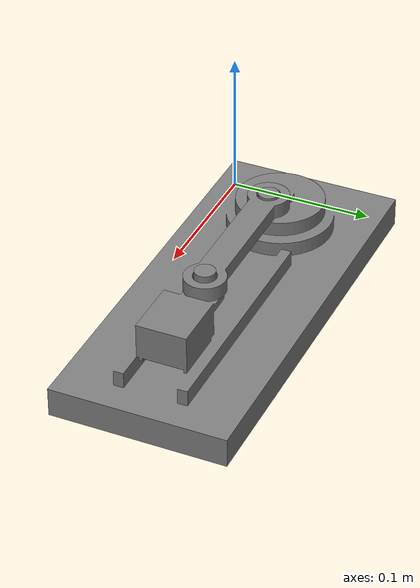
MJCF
<?xml version='1.0' encoding='utf-8'?>
<mujoco model="slider_crank">
  <compiler angle="radian" coordinate="local" />
  <option gravity="0 0 -9.81" />
  <asset>
    <mesh name="mesh_part_connecting_rod_0c5d39419c04" file="meshes/mesh_part_connecting_rod_0c5d39419c04.obj" scale="0.001 0.001 0.001" />
    <mesh name="mesh_part_crank_549dc4304079" file="meshes/mesh_part_crank_549dc4304079.obj" scale="0.001 0.001 0.001" />
    <mesh name="mesh_part_ground_0757f7823ec5" file="meshes/mesh_part_ground_0757f7823ec5.obj" scale="0.001 0.001 0.001" />
    <mesh name="mesh_part_slider_a8d32eeed5af" file="meshes/mesh_part_slider_a8d32eeed5af.obj" scale="0.001 0.001 0.001" />
  </asset>
  <worldbody>
    <geom name="ground_base_cf79ea9c92e3" type="mesh" mesh="mesh_part_ground_0757f7823ec5" density="7800" contype="1" conaffinity="1" pos="0 0 0" quat="1 0 0 0" />
    <body name="body_crank" pos="0.06 0.06 0.02" quat="1 0 0 0">
      <joint name="joint_joint_slider_crank_joint_crank_ddb0843d64f3" type="hinge" pos="0 0 0" axis="0 0 1" />
      <geom name="crank" type="mesh" mesh="mesh_part_crank_549dc4304079" density="7800" contype="1" conaffinity="1" pos="0 0 0" quat="1 0 0 0" />
      <body name="body_connecting_rod" pos="0.02 0 0.027" quat="1 0 0 0">
        <joint name="joint_joint_slider_crank_joint_rod_a1fde0b4cfbb" type="hinge" pos="0 0 0.005" axis="0 0 1" />
        <geom name="connecting_rod" type="mesh" mesh="mesh_part_connecting_rod_0c5d39419c04" density="7800" contype="1" conaffinity="1" pos="0 0 0" quat="1 0 0 0" />
        <site name="closure_a_joint_slider_crank_joint_slider_pin_98a34b3d38c8" size="0.0012" type="sphere" pos="0.1 0 0.005" quat="1 0 0 0" />
      </body>
    </body>
    <body name="body_slider" pos="0.18 0.06 0.033" quat="1 0 0 0">
      <joint name="joint_joint_slider_crank_joint_slider_951378ed43f7" type="slide" pos="0 0 -0.003" axis="1 0 0" />
      <geom name="slider" type="mesh" mesh="mesh_part_slider_a8d32eeed5af" density="7800" contype="1" conaffinity="1" pos="0 0 0" quat="1 0 0 0" />
      <site name="closure_b_joint_slider_crank_joint_slider_pin_d66d7f22cd25" size="0.0012" type="sphere" pos="0 0 0.019" quat="1 0 0 0" />
    </body>
  </worldbody>
  <tendon />
  <equality>
    <connect name="closure_joint_slider_crank_joint_slider_pin_d385004c577d" site1="closure_a_joint_slider_crank_joint_slider_pin_98a34b3d38c8" site2="closure_b_joint_slider_crank_joint_slider_pin_d66d7f22cd25" />
  </equality>
</mujoco>
